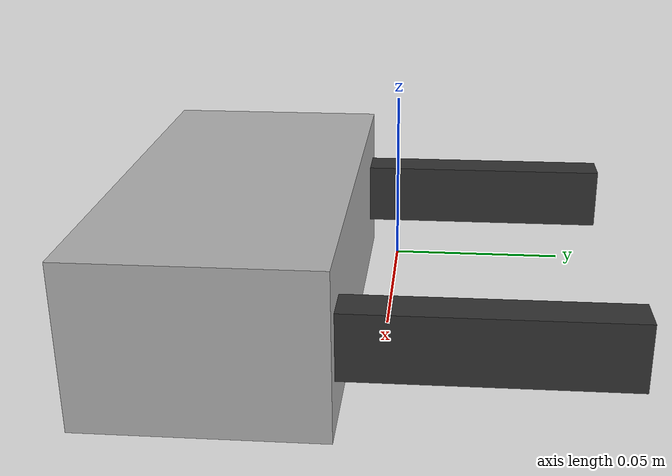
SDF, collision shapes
<?xml version="1.0"?>
<!-- This sdf file is based on schunk_wsg_50.sdf -->
<sdf version="1.7">
  <model name="Schunk_Gripper">
    <link name="body">
      <pose>0 -0.049133 0 0 0 0</pose>
      <inertial>
        <mass>0.988882</mass>
        <inertia>
          <ixx>0.162992</ixx>
          <ixy>0</ixy>
          <ixz>0</ixz>
          <iyy>0.162992</iyy>
          <iyz>0</iyz>
          <izz>0.164814</izz>
        </inertia>
      </inertial>
      <self_collide>0</self_collide>
      <kinematic>0</kinematic>
      <visual name="visual">
        <geometry>
          <mesh>
            <scale>1 1 1</scale>
            <uri>package://wsg_50_description/meshes/wsg_body.obj</uri>
          </mesh>
        </geometry>
        <material>
          <diffuse>0.7 0.7 0.7 1</diffuse>
        </material>
      </visual>
      <collision name="body_collision">
        <laser_retro>0</laser_retro>
        <max_contacts>10</max_contacts>
        <geometry>
          <box>
            <size>0.146 0.0725 0.05</size>
          </box>
        </geometry>
        <surface>
          <friction>
            <ode>
              <mu>1</mu>
              <mu2>1</mu2>
              <fdir1>0 0 0</fdir1>
              <slip1>0</slip1>
              <slip2>0</slip2>
            </ode>
            <torsional>
              <coefficient>1</coefficient>
              <patch_radius>0</patch_radius>
              <surface_radius>0</surface_radius>
              <use_patch_radius>1</use_patch_radius>
              <ode>
                <slip>0</slip>
              </ode>
            </torsional>
          </friction>
          <bounce>
            <restitution_coefficient>0</restitution_coefficient>
            <threshold>1e+06</threshold>
          </bounce>
          <contact>
            <collide_without_contact>0</collide_without_contact>
            <collide_without_contact_bitmask>1</collide_without_contact_bitmask>
            <collide_bitmask>1</collide_bitmask>
            <ode>
              <soft_cfm>0</soft_cfm>
              <soft_erp>0.2</soft_erp>
              <kp>1e+13</kp>
              <kd>1</kd>
              <max_vel>0.01</max_vel>
              <min_depth>0</min_depth>
            </ode>
            <bullet>
              <split_impulse>1</split_impulse>
              <split_impulse_penetration_threshold>-0.01</split_impulse_penetration_threshold>
              <soft_cfm>0</soft_cfm>
              <soft_erp>0.2</soft_erp>
              <kp>1e+13</kp>
              <kd>1</kd>
            </bullet>
          </contact>
        </surface>
      </collision>
    </link>
    <frame name="body_frame">
      <pose relative_to="body"/>
    </frame>
    <link name="left_finger">
      <pose>-0.06 0.028 0 0 3.141592 0</pose>
      <inertial>
        <mass>0.05</mass>
        <inertia>
          <ixx>0.16</ixx>
          <ixy>0</ixy>
          <ixz>0</ixz>
          <iyy>0.16</iyy>
          <iyz>0</iyz>
          <izz>0.16</izz>
        </inertia>
      </inertial>
      <self_collide>0</self_collide>
      <kinematic>0</kinematic>
      <visual name="visual">
        <geometry>
          <mesh>
            <scale>1 1 1</scale>
            <uri>package://wsg_50_description/meshes/finger_without_tip.obj</uri>
          </mesh>
        </geometry>
        <material>
          <diffuse>0.2 0.2 0.2 1</diffuse>
        </material>
      </visual>
      <collision name="left_collision">
        <laser_retro>0</laser_retro>
        <max_contacts>10</max_contacts>
        <geometry>
          <box>
            <size>0.012 0.082 0.02</size>
          </box>
        </geometry>
        <surface>
          <friction>
            <ode>
              <mu>1</mu>
              <mu2>1</mu2>
              <fdir1>0 0 0</fdir1>
              <slip1>0</slip1>
              <slip2>0</slip2>
            </ode>
            <torsional>
              <coefficient>1</coefficient>
              <patch_radius>0</patch_radius>
              <surface_radius>0</surface_radius>
              <use_patch_radius>1</use_patch_radius>
              <ode>
                <slip>0</slip>
              </ode>
            </torsional>
          </friction>
          <bounce>
            <restitution_coefficient>0</restitution_coefficient>
            <threshold>1e+06</threshold>
          </bounce>
          <contact>
            <collide_without_contact>0</collide_without_contact>
            <collide_without_contact_bitmask>1</collide_without_contact_bitmask>
            <collide_bitmask>1</collide_bitmask>
            <ode>
              <soft_cfm>0</soft_cfm>
              <soft_erp>0.2</soft_erp>
              <kp>1e+13</kp>
              <kd>1</kd>
              <max_vel>0.01</max_vel>
              <min_depth>0</min_depth>
            </ode>
            <bullet>
              <split_impulse>1</split_impulse>
              <split_impulse_penetration_threshold>-0.01</split_impulse_penetration_threshold>
              <soft_cfm>0</soft_cfm>
              <soft_erp>0.2</soft_erp>
              <kp>1e+13</kp>
              <kd>1</kd>
            </bullet>
          </contact>
        </surface>
      </collision>
    </link>
    <link name="right_finger">
      <pose>0.06 0.028 0 0 0 0</pose>
      <inertial>
        <mass>0.05</mass>
        <inertia>
          <ixx>0.16</ixx>
          <ixy>0</ixy>
          <ixz>0</ixz>
          <iyy>0.16</iyy>
          <iyz>0</iyz>
          <izz>0.16</izz>
        </inertia>
      </inertial>
      <self_collide>0</self_collide>
      <kinematic>0</kinematic>
      <visual name="visual">
        <geometry>
          <mesh>
            <scale>1 1 1</scale>
            <uri>package://wsg_50_description/meshes/finger_without_tip.obj</uri>
          </mesh>
        </geometry>
        <material>
          <diffuse>0.2 0.2 0.2 1</diffuse>
        </material>
      </visual>
      <collision name="right_collision">
        <laser_retro>0</laser_retro>
        <max_contacts>10</max_contacts>
        <geometry>
          <box>
            <size>0.012 0.082 0.02</size>
          </box>
        </geometry>
        <surface>
          <friction>
            <ode>
              <mu>1</mu>
              <mu2>1</mu2>
              <fdir1>0 0 0</fdir1>
              <slip1>0</slip1>
              <slip2>0</slip2>
            </ode>
            <torsional>
              <coefficient>1</coefficient>
              <patch_radius>0</patch_radius>
              <surface_radius>0</surface_radius>
              <use_patch_radius>1</use_patch_radius>
              <ode>
                <slip>0</slip>
              </ode>
            </torsional>
          </friction>
          <bounce>
            <restitution_coefficient>0</restitution_coefficient>
            <threshold>1e+06</threshold>
          </bounce>
          <contact>
            <collide_without_contact>0</collide_without_contact>
            <collide_without_contact_bitmask>1</collide_without_contact_bitmask>
            <collide_bitmask>1</collide_bitmask>
            <ode>
              <soft_cfm>0</soft_cfm>
              <soft_erp>0.2</soft_erp>
              <kp>1e+13</kp>
              <kd>1</kd>
              <max_vel>0.01</max_vel>
              <min_depth>0</min_depth>
            </ode>
            <bullet>
              <split_impulse>1</split_impulse>
              <split_impulse_penetration_threshold>-0.01</split_impulse_penetration_threshold>
              <soft_cfm>0</soft_cfm>
              <soft_erp>0.2</soft_erp>
              <kp>1e+13</kp>
              <kd>1</kd>
            </bullet>
          </contact>
        </surface>
      </collision>
    </link>
    <joint name="left_finger_sliding_joint" type="fixed">
      <parent>body</parent>
      <child>left_finger</child>
    </joint>
    <joint name="right_finger_sliding_joint" type="fixed">
      <parent>body</parent>
      <child>right_finger</child>
    </joint>
    <static>0</static>
    <allow_auto_disable>1</allow_auto_disable>
  </model>
</sdf>
